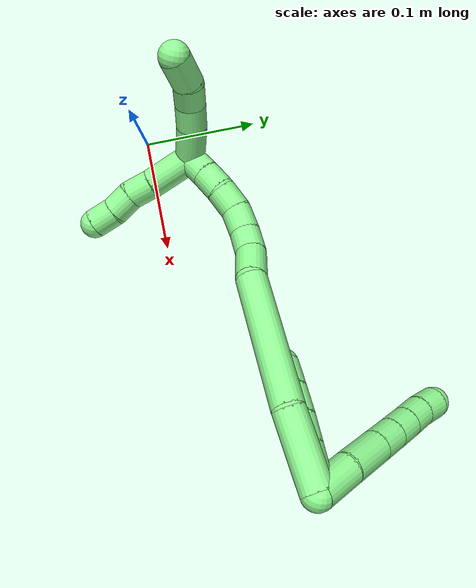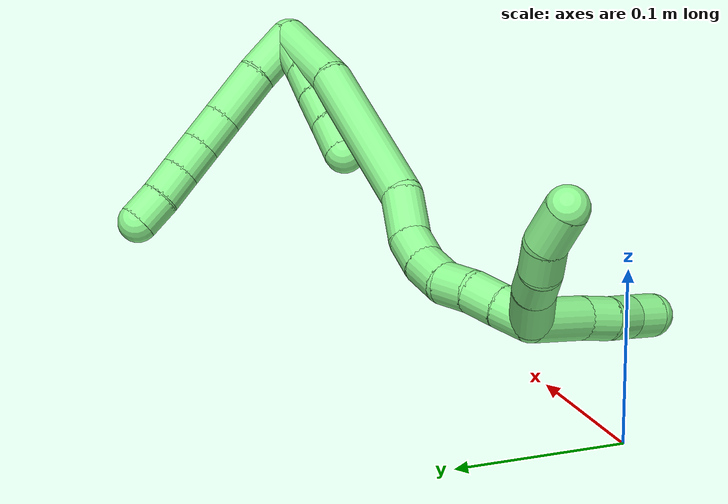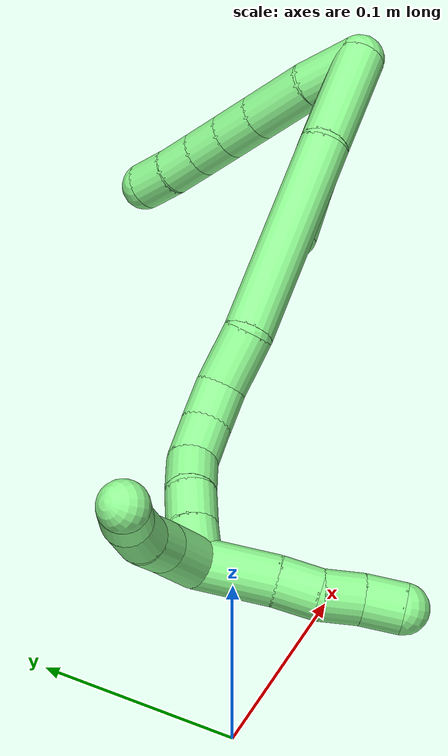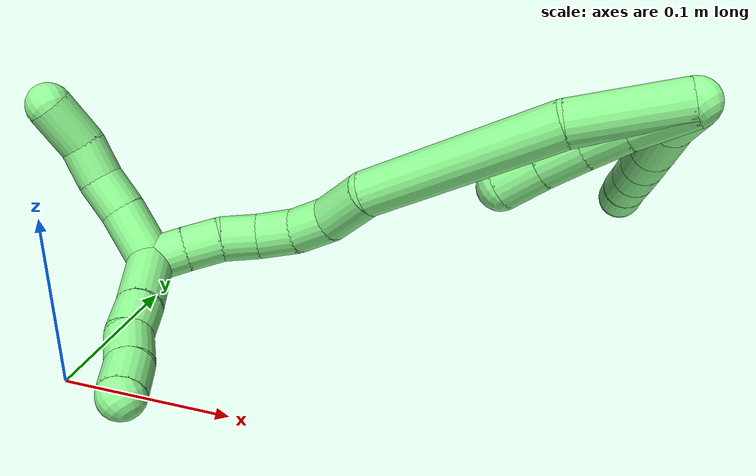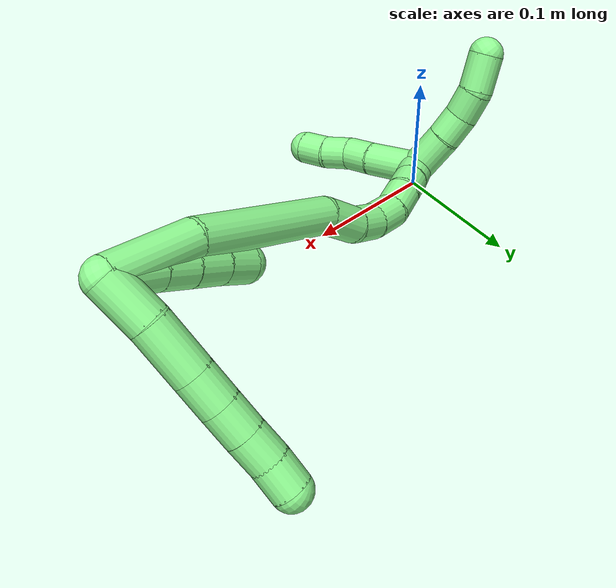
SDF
<sdf version="1.7">
 <world name="default">
  <model name="13">
   <static>0</static>
   <link name="13">
    <collision name="collision-cylinder-e_1_2_8">
     <pose>-0.002048 0.015917 0.001116 -1.50077 -0.127671 0.119052</pose>
     <geometry><cylinder><radius>0.0125</radius><length>0.032174</length></cylinder></geometry>
     <surface>
      <friction><ode><mu>1.16</mu><mu2>1.16</mu2><slip1>0</slip1><slip2>0</slip2></ode></friction>
      <contact><ode><kp>1e+06</kp><kd>1</kd><max_vel>0</max_vel><min_depth>0.001</min_depth></ode></contact>
     </surface>
    </collision>
    <visual name="visual-cylinder-e_1_2_8">
     <pose>-0.002048 0.015917 0.001116 -1.50077 -0.127671 0.119052</pose>
     <geometry><cylinder><radius>0.0125</radius><length>0.032174</length></cylinder></geometry>
     <material><ambient>0.564706 0.984314 0.572549 1</ambient></material>
    </visual>
    <collision name="collision-cylinder-e_2_8_9">
     <pose>-0.006803 0.049164 0.001532 -1.61121 -0.154789 0.161148</pose>
     <geometry><cylinder><radius>0.0125</radius><length>0.035108</length></cylinder></geometry>
     <surface>
      <friction><ode><mu>1.16</mu><mu2>1.16</mu2><slip1>0</slip1><slip2>0</slip2></ode></friction>
      <contact><ode><kp>1e+06</kp><kd>1</kd><max_vel>0</max_vel><min_depth>0.001</min_depth></ode></contact>
     </surface>
    </collision>
    <visual name="visual-cylinder-e_2_8_9">
     <pose>-0.006803 0.049164 0.001532 -1.61121 -0.154789 0.161148</pose>
     <geometry><cylinder><radius>0.0125</radius><length>0.035108</length></cylinder></geometry>
     <material><ambient>0.564706 0.984314 0.572549 1</ambient></material>
    </visual>
    <collision name="collision-cylinder-e_3_9_10">
     <pose>-0.011184 0.077229 0.000415 -1.60957 -0.154649 0.160739</pose>
     <geometry><cylinder><radius>0.0125</radius><length>0.021746</length></cylinder></geometry>
     <surface>
      <friction><ode><mu>1.16</mu><mu2>1.16</mu2><slip1>0</slip1><slip2>0</slip2></ode></friction>
      <contact><ode><kp>1e+06</kp><kd>1</kd><max_vel>0</max_vel><min_depth>0.001</min_depth></ode></contact>
     </surface>
    </collision>
    <visual name="visual-cylinder-e_3_9_10">
     <pose>-0.011184 0.077229 0.000415 -1.60957 -0.154649 0.160739</pose>
     <geometry><cylinder><radius>0.0125</radius><length>0.021746</length></cylinder></geometry>
     <material><ambient>0.564706 0.984314 0.572549 1</ambient></material>
    </visual>
    <collision name="collision-cylinder-e_4_10_11">
     <pose>-0.014472 0.098063 -0.000334 -1.60368 -0.158304 0.163575</pose>
     <geometry><cylinder><radius>0.0125</radius><length>0.020463</length></cylinder></geometry>
     <surface>
      <friction><ode><mu>1.16</mu><mu2>1.16</mu2><slip1>0</slip1><slip2>0</slip2></ode></friction>
      <contact><ode><kp>1e+06</kp><kd>1</kd><max_vel>0</max_vel><min_depth>0.001</min_depth></ode></contact>
     </surface>
    </collision>
    <visual name="visual-cylinder-e_4_10_11">
     <pose>-0.014472 0.098063 -0.000334 -1.60368 -0.158304 0.163575</pose>
     <geometry><cylinder><radius>0.0125</radius><length>0.020463</length></cylinder></geometry>
     <material><ambient>0.564706 0.984314 0.572549 1</ambient></material>
    </visual>
    <collision name="collision-cylinder-e_5_11_12">
     <pose>-0.017786 0.118142 -0.000789 -1.58307 -0.168779 0.170854</pose>
     <geometry><cylinder><radius>0.0125</radius><length>0.020251</length></cylinder></geometry>
     <surface>
      <friction><ode><mu>1.16</mu><mu2>1.16</mu2><slip1>0</slip1><slip2>0</slip2></ode></friction>
      <contact><ode><kp>1e+06</kp><kd>1</kd><max_vel>0</max_vel><min_depth>0.001</min_depth></ode></contact>
     </surface>
    </collision>
    <visual name="visual-cylinder-e_5_11_12">
     <pose>-0.017786 0.118142 -0.000789 -1.58307 -0.168779 0.170854</pose>
     <geometry><cylinder><radius>0.0125</radius><length>0.020251</length></cylinder></geometry>
     <material><ambient>0.564706 0.984314 0.572549 1</ambient></material>
    </visual>
    <collision name="collision-cylinder-e_6_12_6">
     <pose>-0.020304 0.138209 -0.00134 -1.61324 -0.0808 0.0843</pose>
     <geometry><cylinder><radius>0.0125</radius><length>0.020257</length></cylinder></geometry>
     <surface>
      <friction><ode><mu>1.16</mu><mu2>1.16</mu2><slip1>0</slip1><slip2>0</slip2></ode></friction>
      <contact><ode><kp>1e+06</kp><kd>1</kd><max_vel>0</max_vel><min_depth>0.001</min_depth></ode></contact>
     </surface>
    </collision>
    <visual name="visual-cylinder-e_6_12_6">
     <pose>-0.020304 0.138209 -0.00134 -1.61324 -0.0808 0.0843</pose>
     <geometry><cylinder><radius>0.0125</radius><length>0.020257</length></cylinder></geometry>
     <material><ambient>0.564706 0.984314 0.572549 1</ambient></material>
    </visual>
    <collision name="collision-cylinder-e_1_2_13">
     <pose>-0.014197 0.005495 0.005187 -0.814177 -1.08167 0.506764</pose>
     <geometry><cylinder><radius>0.0125</radius><length>0.032165</length></cylinder></geometry>
     <surface>
      <friction><ode><mu>1.16</mu><mu2>1.16</mu2><slip1>0</slip1><slip2>0</slip2></ode></friction>
      <contact><ode><kp>1e+06</kp><kd>1</kd><max_vel>0</max_vel><min_depth>0.001</min_depth></ode></contact>
     </surface>
    </collision>
    <visual name="visual-cylinder-e_1_2_13">
     <pose>-0.014197 0.005495 0.005187 -0.814177 -1.08167 0.506764</pose>
     <geometry><cylinder><radius>0.0125</radius><length>0.032165</length></cylinder></geometry>
     <material><ambient>0.564706 0.984314 0.572549 1</ambient></material>
    </visual>
    <collision name="collision-cylinder-e_2_13_14">
     <pose>-0.038186 0.015161 0.013186 -0.977698 -1.09627 0.628016</pose>
     <geometry><cylinder><radius>0.0125</radius><length>0.022017</length></cylinder></geometry>
     <surface>
      <friction><ode><mu>1.16</mu><mu2>1.16</mu2><slip1>0</slip1><slip2>0</slip2></ode></friction>
      <contact><ode><kp>1e+06</kp><kd>1</kd><max_vel>0</max_vel><min_depth>0.001</min_depth></ode></contact>
     </surface>
    </collision>
    <visual name="visual-cylinder-e_2_13_14">
     <pose>-0.038186 0.015161 0.013186 -0.977698 -1.09627 0.628016</pose>
     <geometry><cylinder><radius>0.0125</radius><length>0.022017</length></cylinder></geometry>
     <material><ambient>0.564706 0.984314 0.572549 1</ambient></material>
    </visual>
    <collision name="collision-cylinder-e_3_14_15">
     <pose>-0.058383 0.023495 0.018599 -1.01221 -1.12993 0.675726</pose>
     <geometry><cylinder><radius>0.0125</radius><length>0.023009</length></cylinder></geometry>
     <surface>
      <friction><ode><mu>1.16</mu><mu2>1.16</mu2><slip1>0</slip1><slip2>0</slip2></ode></friction>
      <contact><ode><kp>1e+06</kp><kd>1</kd><max_vel>0</max_vel><min_depth>0.001</min_depth></ode></contact>
     </surface>
    </collision>
    <visual name="visual-cylinder-e_3_14_15">
     <pose>-0.058383 0.023495 0.018599 -1.01221 -1.12993 0.675726</pose>
     <geometry><cylinder><radius>0.0125</radius><length>0.023009</length></cylinder></geometry>
     <material><ambient>0.564706 0.984314 0.572549 1</ambient></material>
    </visual>
    <collision name="collision-cylinder-e_4_15_5">
     <pose>-0.079153 0.031963 0.02322 -1.13238 -1.14072 0.774304</pose>
     <geometry><cylinder><radius>0.0125</radius><length>0.022808</length></cylinder></geometry>
     <surface>
      <friction><ode><mu>1.16</mu><mu2>1.16</mu2><slip1>0</slip1><slip2>0</slip2></ode></friction>
      <contact><ode><kp>1e+06</kp><kd>1</kd><max_vel>0</max_vel><min_depth>0.001</min_depth></ode></contact>
     </surface>
    </collision>
    <visual name="visual-cylinder-e_4_15_5">
     <pose>-0.079153 0.031963 0.02322 -1.13238 -1.14072 0.774304</pose>
     <geometry><cylinder><radius>0.0125</radius><length>0.022808</length></cylinder></geometry>
     <material><ambient>0.564706 0.984314 0.572549 1</ambient></material>
    </visual>
    <collision name="collision-cylinder-e_1_2_16">
     <pose>-0.025423 0.004369 0.013764 -0.307371 -1.05422 0.179837</pose>
     <geometry><cylinder><radius>0.0125</radius><length>0.058476</length></cylinder></geometry>
     <surface>
      <friction><ode><mu>1.16</mu><mu2>1.16</mu2><slip1>0</slip1><slip2>0</slip2></ode></friction>
      <contact><ode><kp>1e+06</kp><kd>1</kd><max_vel>0</max_vel><min_depth>0.001</min_depth></ode></contact>
     </surface>
    </collision>
    <visual name="visual-cylinder-e_1_2_16">
     <pose>-0.025423 0.004369 0.013764 -0.307371 -1.05422 0.179837</pose>
     <geometry><cylinder><radius>0.0125</radius><length>0.058476</length></cylinder></geometry>
     <material><ambient>0.564706 0.984314 0.572549 1</ambient></material>
    </visual>
    <collision name="collision-cylinder-e_2_16_17">
     <pose>-0.099198 0.025206 0.045414 -0.744146 -1.1049 0.472192</pose>
     <geometry><cylinder><radius>0.0125</radius><length>0.108239</length></cylinder></geometry>
     <surface>
      <friction><ode><mu>1.16</mu><mu2>1.16</mu2><slip1>0</slip1><slip2>0</slip2></ode></friction>
      <contact><ode><kp>1e+06</kp><kd>1</kd><max_vel>0</max_vel><min_depth>0.001</min_depth></ode></contact>
     </surface>
    </collision>
    <visual name="visual-cylinder-e_2_16_17">
     <pose>-0.099198 0.025206 0.045414 -0.744146 -1.1049 0.472192</pose>
     <geometry><cylinder><radius>0.0125</radius><length>0.108239</length></cylinder></geometry>
     <material><ambient>0.564706 0.984314 0.572549 1</ambient></material>
    </visual>
    <collision name="collision-cylinder-e_3_17_18">
     <pose>-0.159437 0.050113 0.065445 -1.32177 -0.938541 0.751069</pose>
     <geometry><cylinder><radius>0.0125</radius><length>0.029473</length></cylinder></geometry>
     <surface>
      <friction><ode><mu>1.16</mu><mu2>1.16</mu2><slip1>0</slip1><slip2>0</slip2></ode></friction>
      <contact><ode><kp>1e+06</kp><kd>1</kd><max_vel>0</max_vel><min_depth>0.001</min_depth></ode></contact>
     </surface>
    </collision>
    <visual name="visual-cylinder-e_3_17_18">
     <pose>-0.159437 0.050113 0.065445 -1.32177 -0.938541 0.751069</pose>
     <geometry><cylinder><radius>0.0125</radius><length>0.029473</length></cylinder></geometry>
     <material><ambient>0.564706 0.984314 0.572549 1</ambient></material>
    </visual>
    <collision name="collision-cylinder-e_4_18_19">
     <pose>-0.180742 0.061797 0.070919 -0.772674 -1.11237 0.495364</pose>
     <geometry><cylinder><radius>0.0125</radius><length>0.021001</length></cylinder></geometry>
     <surface>
      <friction><ode><mu>1.16</mu><mu2>1.16</mu2><slip1>0</slip1><slip2>0</slip2></ode></friction>
      <contact><ode><kp>1e+06</kp><kd>1</kd><max_vel>0</max_vel><min_depth>0.001</min_depth></ode></contact>
     </surface>
    </collision>
    <visual name="visual-cylinder-e_4_18_19">
     <pose>-0.180742 0.061797 0.070919 -0.772674 -1.11237 0.495364</pose>
     <geometry><cylinder><radius>0.0125</radius><length>0.021001</length></cylinder></geometry>
     <material><ambient>0.564706 0.984314 0.572549 1</ambient></material>
    </visual>
    <collision name="collision-cylinder-e_5_19_20">
     <pose>-0.199773 0.066225 0.079392 -0.226133 -1.06865 0.134184</pose>
     <geometry><cylinder><radius>0.0125</radius><length>0.021938</length></cylinder></geometry>
     <surface>
      <friction><ode><mu>1.16</mu><mu2>1.16</mu2><slip1>0</slip1><slip2>0</slip2></ode></friction>
      <contact><ode><kp>1e+06</kp><kd>1</kd><max_vel>0</max_vel><min_depth>0.001</min_depth></ode></contact>
     </surface>
    </collision>
    <visual name="visual-cylinder-e_5_19_20">
     <pose>-0.199773 0.066225 0.079392 -0.226133 -1.06865 0.134184</pose>
     <geometry><cylinder><radius>0.0125</radius><length>0.021938</length></cylinder></geometry>
     <material><ambient>0.564706 0.984314 0.572549 1</ambient></material>
    </visual>
    <collision name="collision-cylinder-e_6_20_21">
     <pose>-0.218272 0.065008 0.089326 0.464682 -1.02812 -0.26566</pose>
     <geometry><cylinder><radius>0.0125</radius><length>0.020747</length></cylinder></geometry>
     <surface>
      <friction><ode><mu>1.16</mu><mu2>1.16</mu2><slip1>0</slip1><slip2>0</slip2></ode></friction>
      <contact><ode><kp>1e+06</kp><kd>1</kd><max_vel>0</max_vel><min_depth>0.001</min_depth></ode></contact>
     </surface>
    </collision>
    <visual name="visual-cylinder-e_6_20_21">
     <pose>-0.218272 0.065008 0.089326 0.464682 -1.02812 -0.26566</pose>
     <geometry><cylinder><radius>0.0125</radius><length>0.020747</length></cylinder></geometry>
     <material><ambient>0.564706 0.984314 0.572549 1</ambient></material>
    </visual>
    <collision name="collision-cylinder-e_7_21_22">
     <pose>-0.236597 0.060905 0.097027 0.528874 -1.22771 -0.377087</pose>
     <geometry><cylinder><radius>0.0125</radius><length>0.020053</length></cylinder></geometry>
     <surface>
      <friction><ode><mu>1.16</mu><mu2>1.16</mu2><slip1>0</slip1><slip2>0</slip2></ode></friction>
      <contact><ode><kp>1e+06</kp><kd>1</kd><max_vel>0</max_vel><min_depth>0.001</min_depth></ode></contact>
     </surface>
    </collision>
    <visual name="visual-cylinder-e_7_21_22">
     <pose>-0.236597 0.060905 0.097027 0.528874 -1.22771 -0.377087</pose>
     <geometry><cylinder><radius>0.0125</radius><length>0.020053</length></cylinder></geometry>
     <material><ambient>0.564706 0.984314 0.572549 1</ambient></material>
    </visual>
    <collision name="collision-cylinder-e_8_22_1">
     <pose>-0.255527 0.057107 0.10245 0.695791 -1.23882 -0.50606</pose>
     <geometry><cylinder><radius>0.0125</radius><length>0.020071</length></cylinder></geometry>
     <surface>
      <friction><ode><mu>1.16</mu><mu2>1.16</mu2><slip1>0</slip1><slip2>0</slip2></ode></friction>
      <contact><ode><kp>1e+06</kp><kd>1</kd><max_vel>0</max_vel><min_depth>0.001</min_depth></ode></contact>
     </surface>
    </collision>
    <visual name="visual-cylinder-e_8_22_1">
     <pose>-0.255527 0.057107 0.10245 0.695791 -1.23882 -0.50606</pose>
     <geometry><cylinder><radius>0.0125</radius><length>0.020071</length></cylinder></geometry>
     <material><ambient>0.564706 0.984314 0.572549 1</ambient></material>
    </visual>
    <collision name="collision-cylinder-e_1_1_23">
     <pose>-0.263872 0.052139 0.120446 0.183358 0.072426 0.006661</pose>
     <geometry><cylinder><radius>0.0125</radius><length>0.031583</length></cylinder></geometry>
     <surface>
      <friction><ode><mu>1.16</mu><mu2>1.16</mu2><slip1>0</slip1><slip2>0</slip2></ode></friction>
      <contact><ode><kp>1e+06</kp><kd>1</kd><max_vel>0</max_vel><min_depth>0.001</min_depth></ode></contact>
     </surface>
    </collision>
    <visual name="visual-cylinder-e_1_1_23">
     <pose>-0.263872 0.052139 0.120446 0.183358 0.072426 0.006661</pose>
     <geometry><cylinder><radius>0.0125</radius><length>0.031583</length></cylinder></geometry>
     <material><ambient>0.564706 0.984314 0.572549 1</ambient></material>
    </visual>
    <collision name="collision-cylinder-e_2_23_24">
     <pose>-0.262815 0.046626 0.14594 0.25798 -0.008301 -0.001077</pose>
     <geometry><cylinder><radius>0.0125</radius><length>0.020701</length></cylinder></geometry>
     <surface>
      <friction><ode><mu>1.16</mu><mu2>1.16</mu2><slip1>0</slip1><slip2>0</slip2></ode></friction>
      <contact><ode><kp>1e+06</kp><kd>1</kd><max_vel>0</max_vel><min_depth>0.001</min_depth></ode></contact>
     </surface>
    </collision>
    <visual name="visual-cylinder-e_2_23_24">
     <pose>-0.262815 0.046626 0.14594 0.25798 -0.008301 -0.001077</pose>
     <geometry><cylinder><radius>0.0125</radius><length>0.020701</length></cylinder></geometry>
     <material><ambient>0.564706 0.984314 0.572549 1</ambient></material>
    </visual>
    <collision name="collision-cylinder-e_3_24_25">
     <pose>-0.261124 0.040064 0.165507 0.389327 0.170273 0.033649</pose>
     <geometry><cylinder><radius>0.0125</radius><length>0.020968</length></cylinder></geometry>
     <surface>
      <friction><ode><mu>1.16</mu><mu2>1.16</mu2><slip1>0</slip1><slip2>0</slip2></ode></friction>
      <contact><ode><kp>1e+06</kp><kd>1</kd><max_vel>0</max_vel><min_depth>0.001</min_depth></ode></contact>
     </surface>
    </collision>
    <visual name="visual-cylinder-e_3_24_25">
     <pose>-0.261124 0.040064 0.165507 0.389327 0.170273 0.033649</pose>
     <geometry><cylinder><radius>0.0125</radius><length>0.020968</length></cylinder></geometry>
     <material><ambient>0.564706 0.984314 0.572549 1</ambient></material>
    </visual>
    <collision name="collision-cylinder-e_4_25_4">
     <pose>-0.259651 0.028072 0.185726 0.648032 -0.022647 -0.007606</pose>
     <geometry><cylinder><radius>0.0125</radius><length>0.026748</length></cylinder></geometry>
     <surface>
      <friction><ode><mu>1.16</mu><mu2>1.16</mu2><slip1>0</slip1><slip2>0</slip2></ode></friction>
      <contact><ode><kp>1e+06</kp><kd>1</kd><max_vel>0</max_vel><min_depth>0.001</min_depth></ode></contact>
     </surface>
    </collision>
    <visual name="visual-cylinder-e_4_25_4">
     <pose>-0.259651 0.028072 0.185726 0.648032 -0.022647 -0.007606</pose>
     <geometry><cylinder><radius>0.0125</radius><length>0.026748</length></cylinder></geometry>
     <material><ambient>0.564706 0.984314 0.572549 1</ambient></material>
    </visual>
    <collision name="collision-cylinder-e_1_1_26">
     <pose>-0.270839 0.042006 0.092036 2.35311 -0.307607 -0.71341</pose>
     <geometry><cylinder><radius>0.0125</radius><length>0.038474</length></cylinder></geometry>
     <surface>
      <friction><ode><mu>1.16</mu><mu2>1.16</mu2><slip1>0</slip1><slip2>0</slip2></ode></friction>
      <contact><ode><kp>1e+06</kp><kd>1</kd><max_vel>0</max_vel><min_depth>0.001</min_depth></ode></contact>
     </surface>
    </collision>
    <visual name="visual-cylinder-e_1_1_26">
     <pose>-0.270839 0.042006 0.092036 2.35311 -0.307607 -0.71341</pose>
     <geometry><cylinder><radius>0.0125</radius><length>0.038474</length></cylinder></geometry>
     <material><ambient>0.564706 0.984314 0.572549 1</ambient></material>
    </visual>
    <collision name="collision-cylinder-e_2_26_27">
     <pose>-0.280755 0.02202 0.072451 2.33263 -0.400996 -0.886468</pose>
     <geometry><cylinder><radius>0.0125</radius><length>0.020963</length></cylinder></geometry>
     <surface>
      <friction><ode><mu>1.16</mu><mu2>1.16</mu2><slip1>0</slip1><slip2>0</slip2></ode></friction>
      <contact><ode><kp>1e+06</kp><kd>1</kd><max_vel>0</max_vel><min_depth>0.001</min_depth></ode></contact>
     </surface>
    </collision>
    <visual name="visual-cylinder-e_2_26_27">
     <pose>-0.280755 0.02202 0.072451 2.33263 -0.400996 -0.886468</pose>
     <geometry><cylinder><radius>0.0125</radius><length>0.020963</length></cylinder></geometry>
     <material><ambient>0.564706 0.984314 0.572549 1</ambient></material>
    </visual>
    <collision name="collision-cylinder-e_3_27_28">
     <pose>-0.286429 0.008824 0.057903 2.47431 -0.156403 -0.444694</pose>
     <geometry><cylinder><radius>0.0125</radius><length>0.020328</length></cylinder></geometry>
     <surface>
      <friction><ode><mu>1.16</mu><mu2>1.16</mu2><slip1>0</slip1><slip2>0</slip2></ode></friction>
      <contact><ode><kp>1e+06</kp><kd>1</kd><max_vel>0</max_vel><min_depth>0.001</min_depth></ode></contact>
     </surface>
    </collision>
    <visual name="visual-cylinder-e_3_27_28">
     <pose>-0.286429 0.008824 0.057903 2.47431 -0.156403 -0.444694</pose>
     <geometry><cylinder><radius>0.0125</radius><length>0.020328</length></cylinder></geometry>
     <material><ambient>0.564706 0.984314 0.572549 1</ambient></material>
    </visual>
    <collision name="collision-cylinder-e_4_28_3">
     <pose>-0.291075 -0.004381 0.043376 2.33051 -0.307477 -0.692751</pose>
     <geometry><cylinder><radius>0.0125</radius><length>0.020234</length></cylinder></geometry>
     <surface>
      <friction><ode><mu>1.16</mu><mu2>1.16</mu2><slip1>0</slip1><slip2>0</slip2></ode></friction>
      <contact><ode><kp>1e+06</kp><kd>1</kd><max_vel>0</max_vel><min_depth>0.001</min_depth></ode></contact>
     </surface>
    </collision>
    <visual name="visual-cylinder-e_4_28_3">
     <pose>-0.291075 -0.004381 0.043376 2.33051 -0.307477 -0.692751</pose>
     <geometry><cylinder><radius>0.0125</radius><length>0.020234</length></cylinder></geometry>
     <material><ambient>0.564706 0.984314 0.572549 1</ambient></material>
    </visual>
    <collision name="collision-sphere-3">
     <pose>-0.294137 -0.011372 0.036735 0 -0 0</pose>
     <geometry><sphere><radius>0.0125</radius></sphere></geometry>
     <surface>
      <friction><ode><mu>1.16</mu><mu2>1.16</mu2><slip1>0</slip1><slip2>0</slip2></ode></friction>
      <contact><ode><kp>1e+06</kp><kd>1</kd><max_vel>0</max_vel><min_depth>0.001</min_depth></ode></contact>
     </surface>
    </collision>
    <visual name="visual-sphere-3">
     <pose>-0.294137 -0.011372 0.036735 0 -0 0</pose>
     <geometry><sphere><radius>0.0125</radius></sphere></geometry>
     <material><ambient>0.564706 0.984314 0.572549 1</ambient></material>
    </visual>
    <collision name="collision-sphere-28">
     <pose>-0.288013 0.002611 0.050017 0 -0 0</pose>
     <geometry><sphere><radius>0.0125</radius></sphere></geometry>
     <surface>
      <friction><ode><mu>1.16</mu><mu2>1.16</mu2><slip1>0</slip1><slip2>0</slip2></ode></friction>
      <contact><ode><kp>1e+06</kp><kd>1</kd><max_vel>0</max_vel><min_depth>0.001</min_depth></ode></contact>
     </surface>
    </collision>
    <visual name="visual-sphere-28">
     <pose>-0.288013 0.002611 0.050017 0 -0 0</pose>
     <geometry><sphere><radius>0.0125</radius></sphere></geometry>
     <material><ambient>0.564706 0.984314 0.572549 1</ambient></material>
    </visual>
    <collision name="collision-sphere-27">
     <pose>-0.284846 0.015037 0.06579 0 -0 0</pose>
     <geometry><sphere><radius>0.0125</radius></sphere></geometry>
     <surface>
      <friction><ode><mu>1.16</mu><mu2>1.16</mu2><slip1>0</slip1><slip2>0</slip2></ode></friction>
      <contact><ode><kp>1e+06</kp><kd>1</kd><max_vel>0</max_vel><min_depth>0.001</min_depth></ode></contact>
     </surface>
    </collision>
    <visual name="visual-sphere-27">
     <pose>-0.284846 0.015037 0.06579 0 -0 0</pose>
     <geometry><sphere><radius>0.0125</radius></sphere></geometry>
     <material><ambient>0.564706 0.984314 0.572549 1</ambient></material>
    </visual>
    <collision name="collision-sphere-26">
     <pose>-0.276664 0.029002 0.079112 0 -0 0</pose>
     <geometry><sphere><radius>0.0125</radius></sphere></geometry>
     <surface>
      <friction><ode><mu>1.16</mu><mu2>1.16</mu2><slip1>0</slip1><slip2>0</slip2></ode></friction>
      <contact><ode><kp>1e+06</kp><kd>1</kd><max_vel>0</max_vel><min_depth>0.001</min_depth></ode></contact>
     </surface>
    </collision>
    <visual name="visual-sphere-26">
     <pose>-0.276664 0.029002 0.079112 0 -0 0</pose>
     <geometry><sphere><radius>0.0125</radius></sphere></geometry>
     <material><ambient>0.564706 0.984314 0.572549 1</ambient></material>
    </visual>
    <collision name="collision-sphere-4">
     <pose>-0.259953 0.020001 0.196386 0 -0 0</pose>
     <geometry><sphere><radius>0.0125</radius></sphere></geometry>
     <surface>
      <friction><ode><mu>1.16</mu><mu2>1.16</mu2><slip1>0</slip1><slip2>0</slip2></ode></friction>
      <contact><ode><kp>1e+06</kp><kd>1</kd><max_vel>0</max_vel><min_depth>0.001</min_depth></ode></contact>
     </surface>
    </collision>
    <visual name="visual-sphere-4">
     <pose>-0.259953 0.020001 0.196386 0 -0 0</pose>
     <geometry><sphere><radius>0.0125</radius></sphere></geometry>
     <material><ambient>0.564706 0.984314 0.572549 1</ambient></material>
    </visual>
    <collision name="collision-sphere-25">
     <pose>-0.259348 0.036142 0.175066 0 -0 0</pose>
     <geometry><sphere><radius>0.0125</radius></sphere></geometry>
     <surface>
      <friction><ode><mu>1.16</mu><mu2>1.16</mu2><slip1>0</slip1><slip2>0</slip2></ode></friction>
      <contact><ode><kp>1e+06</kp><kd>1</kd><max_vel>0</max_vel><min_depth>0.001</min_depth></ode></contact>
     </surface>
    </collision>
    <visual name="visual-sphere-25">
     <pose>-0.259348 0.036142 0.175066 0 -0 0</pose>
     <geometry><sphere><radius>0.0125</radius></sphere></geometry>
     <material><ambient>0.564706 0.984314 0.572549 1</ambient></material>
    </visual>
    <collision name="collision-sphere-24">
     <pose>-0.262901 0.043986 0.155948 0 -0 0</pose>
     <geometry><sphere><radius>0.0125</radius></sphere></geometry>
     <surface>
      <friction><ode><mu>1.16</mu><mu2>1.16</mu2><slip1>0</slip1><slip2>0</slip2></ode></friction>
      <contact><ode><kp>1e+06</kp><kd>1</kd><max_vel>0</max_vel><min_depth>0.001</min_depth></ode></contact>
     </surface>
    </collision>
    <visual name="visual-sphere-24">
     <pose>-0.262901 0.043986 0.155948 0 -0 0</pose>
     <geometry><sphere><radius>0.0125</radius></sphere></geometry>
     <material><ambient>0.564706 0.984314 0.572549 1</ambient></material>
    </visual>
    <collision name="collision-sphere-23">
     <pose>-0.262729 0.049267 0.135933 0 -0 0</pose>
     <geometry><sphere><radius>0.0125</radius></sphere></geometry>
     <surface>
      <friction><ode><mu>1.16</mu><mu2>1.16</mu2><slip1>0</slip1><slip2>0</slip2></ode></friction>
      <contact><ode><kp>1e+06</kp><kd>1</kd><max_vel>0</max_vel><min_depth>0.001</min_depth></ode></contact>
     </surface>
    </collision>
    <visual name="visual-sphere-23">
     <pose>-0.262729 0.049267 0.135933 0 -0 0</pose>
     <geometry><sphere><radius>0.0125</radius></sphere></geometry>
     <material><ambient>0.564706 0.984314 0.572549 1</ambient></material>
    </visual>
    <collision name="collision-sphere-1">
     <pose>-0.265014 0.055011 0.10496 0 -0 0</pose>
     <geometry><sphere><radius>0.0125</radius></sphere></geometry>
     <surface>
      <friction><ode><mu>1.16</mu><mu2>1.16</mu2><slip1>0</slip1><slip2>0</slip2></ode></friction>
      <contact><ode><kp>1e+06</kp><kd>1</kd><max_vel>0</max_vel><min_depth>0.001</min_depth></ode></contact>
     </surface>
    </collision>
    <visual name="visual-sphere-1">
     <pose>-0.265014 0.055011 0.10496 0 -0 0</pose>
     <geometry><sphere><radius>0.0125</radius></sphere></geometry>
     <material><ambient>0.564706 0.984314 0.572549 1</ambient></material>
    </visual>
    <collision name="collision-sphere-22">
     <pose>-0.246039 0.059204 0.099939 0 -0 0</pose>
     <geometry><sphere><radius>0.0125</radius></sphere></geometry>
     <surface>
      <friction><ode><mu>1.16</mu><mu2>1.16</mu2><slip1>0</slip1><slip2>0</slip2></ode></friction>
      <contact><ode><kp>1e+06</kp><kd>1</kd><max_vel>0</max_vel><min_depth>0.001</min_depth></ode></contact>
     </surface>
    </collision>
    <visual name="visual-sphere-22">
     <pose>-0.246039 0.059204 0.099939 0 -0 0</pose>
     <geometry><sphere><radius>0.0125</radius></sphere></geometry>
     <material><ambient>0.564706 0.984314 0.572549 1</ambient></material>
    </visual>
    <collision name="collision-sphere-21">
     <pose>-0.227155 0.062607 0.094115 0 -0 0</pose>
     <geometry><sphere><radius>0.0125</radius></sphere></geometry>
     <surface>
      <friction><ode><mu>1.16</mu><mu2>1.16</mu2><slip1>0</slip1><slip2>0</slip2></ode></friction>
      <contact><ode><kp>1e+06</kp><kd>1</kd><max_vel>0</max_vel><min_depth>0.001</min_depth></ode></contact>
     </surface>
    </collision>
    <visual name="visual-sphere-21">
     <pose>-0.227155 0.062607 0.094115 0 -0 0</pose>
     <geometry><sphere><radius>0.0125</radius></sphere></geometry>
     <material><ambient>0.564706 0.984314 0.572549 1</ambient></material>
    </visual>
    <collision name="collision-sphere-12">
     <pose>-0.019487 0.128123 -0.000911 0 -0 0</pose>
     <geometry><sphere><radius>0.0125</radius></sphere></geometry>
     <surface>
      <friction><ode><mu>1.16</mu><mu2>1.16</mu2><slip1>0</slip1><slip2>0</slip2></ode></friction>
      <contact><ode><kp>1e+06</kp><kd>1</kd><max_vel>0</max_vel><min_depth>0.001</min_depth></ode></contact>
     </surface>
    </collision>
    <visual name="visual-sphere-12">
     <pose>-0.019487 0.128123 -0.000911 0 -0 0</pose>
     <geometry><sphere><radius>0.0125</radius></sphere></geometry>
     <material><ambient>0.564706 0.984314 0.572549 1</ambient></material>
    </visual>
    <collision name="collision-sphere-11">
     <pose>-0.016085 0.108161 -0.000666 0 -0 0</pose>
     <geometry><sphere><radius>0.0125</radius></sphere></geometry>
     <surface>
      <friction><ode><mu>1.16</mu><mu2>1.16</mu2><slip1>0</slip1><slip2>0</slip2></ode></friction>
      <contact><ode><kp>1e+06</kp><kd>1</kd><max_vel>0</max_vel><min_depth>0.001</min_depth></ode></contact>
     </surface>
    </collision>
    <visual name="visual-sphere-11">
     <pose>-0.016085 0.108161 -0.000666 0 -0 0</pose>
     <geometry><sphere><radius>0.0125</radius></sphere></geometry>
     <material><ambient>0.564706 0.984314 0.572549 1</ambient></material>
    </visual>
    <collision name="collision-sphere-10">
     <pose>-0.012859 0.087964 -2e-06 0 -0 0</pose>
     <geometry><sphere><radius>0.0125</radius></sphere></geometry>
     <surface>
      <friction><ode><mu>1.16</mu><mu2>1.16</mu2><slip1>0</slip1><slip2>0</slip2></ode></friction>
      <contact><ode><kp>1e+06</kp><kd>1</kd><max_vel>0</max_vel><min_depth>0.001</min_depth></ode></contact>
     </surface>
    </collision>
    <visual name="visual-sphere-10">
     <pose>-0.012859 0.087964 -2e-06 0 -0 0</pose>
     <geometry><sphere><radius>0.0125</radius></sphere></geometry>
     <material><ambient>0.564706 0.984314 0.572549 1</ambient></material>
    </visual>
    <collision name="collision-sphere-9">
     <pose>-0.009509 0.066494 0.000831 0 -0 0</pose>
     <geometry><sphere><radius>0.0125</radius></sphere></geometry>
     <surface>
      <friction><ode><mu>1.16</mu><mu2>1.16</mu2><slip1>0</slip1><slip2>0</slip2></ode></friction>
      <contact><ode><kp>1e+06</kp><kd>1</kd><max_vel>0</max_vel><min_depth>0.001</min_depth></ode></contact>
     </surface>
    </collision>
    <visual name="visual-sphere-9">
     <pose>-0.009509 0.066494 0.000831 0 -0 0</pose>
     <geometry><sphere><radius>0.0125</radius></sphere></geometry>
     <material><ambient>0.564706 0.984314 0.572549 1</ambient></material>
    </visual>
    <collision name="collision-sphere-2">
     <geometry><sphere><radius>0.0125</radius></sphere></geometry>
     <surface>
      <friction><ode><mu>1.16</mu><mu2>1.16</mu2><slip1>0</slip1><slip2>0</slip2></ode></friction>
      <contact><ode><kp>1e+06</kp><kd>1</kd><max_vel>0</max_vel><min_depth>0.001</min_depth></ode></contact>
     </surface>
    </collision>
    <visual name="visual-sphere-2">
     <geometry><sphere><radius>0.0125</radius></sphere></geometry>
     <material><ambient>0.564706 0.984314 0.572549 1</ambient></material>
    </visual>
    <collision name="collision-sphere-19">
     <pose>-0.190158 0.065041 0.074247 0 -0 0</pose>
     <geometry><sphere><radius>0.0125</radius></sphere></geometry>
     <surface>
      <friction><ode><mu>1.16</mu><mu2>1.16</mu2><slip1>0</slip1><slip2>0</slip2></ode></friction>
      <contact><ode><kp>1e+06</kp><kd>1</kd><max_vel>0</max_vel><min_depth>0.001</min_depth></ode></contact>
     </surface>
    </collision>
    <visual name="visual-sphere-19">
     <pose>-0.190158 0.065041 0.074247 0 -0 0</pose>
     <geometry><sphere><radius>0.0125</radius></sphere></geometry>
     <material><ambient>0.564706 0.984314 0.572549 1</ambient></material>
    </visual>
    <collision name="collision-sphere-8">
     <pose>-0.004097 0.031834 0.002233 0 -0 0</pose>
     <geometry><sphere><radius>0.0125</radius></sphere></geometry>
     <surface>
      <friction><ode><mu>1.16</mu><mu2>1.16</mu2><slip1>0</slip1><slip2>0</slip2></ode></friction>
      <contact><ode><kp>1e+06</kp><kd>1</kd><max_vel>0</max_vel><min_depth>0.001</min_depth></ode></contact>
     </surface>
    </collision>
    <visual name="visual-sphere-8">
     <pose>-0.004097 0.031834 0.002233 0 -0 0</pose>
     <geometry><sphere><radius>0.0125</radius></sphere></geometry>
     <material><ambient>0.564706 0.984314 0.572549 1</ambient></material>
    </visual>
    <collision name="collision-sphere-6">
     <pose>-0.021122 0.148296 -0.001768 0 -0 0</pose>
     <geometry><sphere><radius>0.0125</radius></sphere></geometry>
     <surface>
      <friction><ode><mu>1.16</mu><mu2>1.16</mu2><slip1>0</slip1><slip2>0</slip2></ode></friction>
      <contact><ode><kp>1e+06</kp><kd>1</kd><max_vel>0</max_vel><min_depth>0.001</min_depth></ode></contact>
     </surface>
    </collision>
    <visual name="visual-sphere-6">
     <pose>-0.021122 0.148296 -0.001768 0 -0 0</pose>
     <geometry><sphere><radius>0.0125</radius></sphere></geometry>
     <material><ambient>0.564706 0.984314 0.572549 1</ambient></material>
    </visual>
    <collision name="collision-sphere-13">
     <pose>-0.028394 0.01099 0.010375 0 -0 0</pose>
     <geometry><sphere><radius>0.0125</radius></sphere></geometry>
     <surface>
      <friction><ode><mu>1.16</mu><mu2>1.16</mu2><slip1>0</slip1><slip2>0</slip2></ode></friction>
      <contact><ode><kp>1e+06</kp><kd>1</kd><max_vel>0</max_vel><min_depth>0.001</min_depth></ode></contact>
     </surface>
    </collision>
    <visual name="visual-sphere-13">
     <pose>-0.028394 0.01099 0.010375 0 -0 0</pose>
     <geometry><sphere><radius>0.0125</radius></sphere></geometry>
     <material><ambient>0.564706 0.984314 0.572549 1</ambient></material>
    </visual>
    <collision name="collision-sphere-14">
     <pose>-0.047978 0.019332 0.015998 0 -0 0</pose>
     <geometry><sphere><radius>0.0125</radius></sphere></geometry>
     <surface>
      <friction><ode><mu>1.16</mu><mu2>1.16</mu2><slip1>0</slip1><slip2>0</slip2></ode></friction>
      <contact><ode><kp>1e+06</kp><kd>1</kd><max_vel>0</max_vel><min_depth>0.001</min_depth></ode></contact>
     </surface>
    </collision>
    <visual name="visual-sphere-14">
     <pose>-0.047978 0.019332 0.015998 0 -0 0</pose>
     <geometry><sphere><radius>0.0125</radius></sphere></geometry>
     <material><ambient>0.564706 0.984314 0.572549 1</ambient></material>
    </visual>
    <collision name="collision-sphere-15">
     <pose>-0.068787 0.027658 0.021201 0 -0 0</pose>
     <geometry><sphere><radius>0.0125</radius></sphere></geometry>
     <surface>
      <friction><ode><mu>1.16</mu><mu2>1.16</mu2><slip1>0</slip1><slip2>0</slip2></ode></friction>
      <contact><ode><kp>1e+06</kp><kd>1</kd><max_vel>0</max_vel><min_depth>0.001</min_depth></ode></contact>
     </surface>
    </collision>
    <visual name="visual-sphere-15">
     <pose>-0.068787 0.027658 0.021201 0 -0 0</pose>
     <geometry><sphere><radius>0.0125</radius></sphere></geometry>
     <material><ambient>0.564706 0.984314 0.572549 1</ambient></material>
    </visual>
    <collision name="collision-sphere-5">
     <pose>-0.089519 0.036268 0.025238 0 -0 0</pose>
     <geometry><sphere><radius>0.0125</radius></sphere></geometry>
     <surface>
      <friction><ode><mu>1.16</mu><mu2>1.16</mu2><slip1>0</slip1><slip2>0</slip2></ode></friction>
      <contact><ode><kp>1e+06</kp><kd>1</kd><max_vel>0</max_vel><min_depth>0.001</min_depth></ode></contact>
     </surface>
    </collision>
    <visual name="visual-sphere-5">
     <pose>-0.089519 0.036268 0.025238 0 -0 0</pose>
     <geometry><sphere><radius>0.0125</radius></sphere></geometry>
     <material><ambient>0.564706 0.984314 0.572549 1</ambient></material>
    </visual>
    <collision name="collision-sphere-16">
     <pose>-0.050846 0.008738 0.027528 0 -0 0</pose>
     <geometry><sphere><radius>0.0125</radius></sphere></geometry>
     <surface>
      <friction><ode><mu>1.16</mu><mu2>1.16</mu2><slip1>0</slip1><slip2>0</slip2></ode></friction>
      <contact><ode><kp>1e+06</kp><kd>1</kd><max_vel>0</max_vel><min_depth>0.001</min_depth></ode></contact>
     </surface>
    </collision>
    <visual name="visual-sphere-16">
     <pose>-0.050846 0.008738 0.027528 0 -0 0</pose>
     <geometry><sphere><radius>0.0125</radius></sphere></geometry>
     <material><ambient>0.564706 0.984314 0.572549 1</ambient></material>
    </visual>
    <collision name="collision-sphere-17">
     <pose>-0.147549 0.041673 0.063299 0 -0 0</pose>
     <geometry><sphere><radius>0.0125</radius></sphere></geometry>
     <surface>
      <friction><ode><mu>1.16</mu><mu2>1.16</mu2><slip1>0</slip1><slip2>0</slip2></ode></friction>
      <contact><ode><kp>1e+06</kp><kd>1</kd><max_vel>0</max_vel><min_depth>0.001</min_depth></ode></contact>
     </surface>
    </collision>
    <visual name="visual-sphere-17">
     <pose>-0.147549 0.041673 0.063299 0 -0 0</pose>
     <geometry><sphere><radius>0.0125</radius></sphere></geometry>
     <material><ambient>0.564706 0.984314 0.572549 1</ambient></material>
    </visual>
    <collision name="collision-sphere-18">
     <pose>-0.171326 0.058554 0.067592 0 -0 0</pose>
     <geometry><sphere><radius>0.0125</radius></sphere></geometry>
     <surface>
      <friction><ode><mu>1.16</mu><mu2>1.16</mu2><slip1>0</slip1><slip2>0</slip2></ode></friction>
      <contact><ode><kp>1e+06</kp><kd>1</kd><max_vel>0</max_vel><min_depth>0.001</min_depth></ode></contact>
     </surface>
    </collision>
    <visual name="visual-sphere-18">
     <pose>-0.171326 0.058554 0.067592 0 -0 0</pose>
     <geometry><sphere><radius>0.0125</radius></sphere></geometry>
     <material><ambient>0.564706 0.984314 0.572549 1</ambient></material>
    </visual>
    <collision name="collision-sphere-20">
     <pose>-0.209389 0.067409 0.084537 0 -0 0</pose>
     <geometry><sphere><radius>0.0125</radius></sphere></geometry>
     <surface>
      <friction><ode><mu>1.16</mu><mu2>1.16</mu2><slip1>0</slip1><slip2>0</slip2></ode></friction>
      <contact><ode><kp>1e+06</kp><kd>1</kd><max_vel>0</max_vel><min_depth>0.001</min_depth></ode></contact>
     </surface>
    </collision>
    <visual name="visual-sphere-20">
     <pose>-0.209389 0.067409 0.084537 0 -0 0</pose>
     <geometry><sphere><radius>0.0125</radius></sphere></geometry>
     <material><ambient>0.564706 0.984314 0.572549 1</ambient></material>
    </visual>
    <inertial>
     <pose>-0.133037 0.040261 0.054103 0 -0 0</pose>
     <mass>0.75</mass>
     <inertia>
      <ixx>8.6e-05</ixx>
      <ixy>0</ixy>
      <ixz>0</ixz>
      <iyy>0.000178</iyy>
      <iyz>0</iyz>
      <izz>0.000104</izz>
     </inertia>
    </inertial>
   </link>
   <pose>0.305774 0.083159 0.168524 -0.749216 -0.549691 0.59061</pose>
  </model>
 </world>
</sdf>
